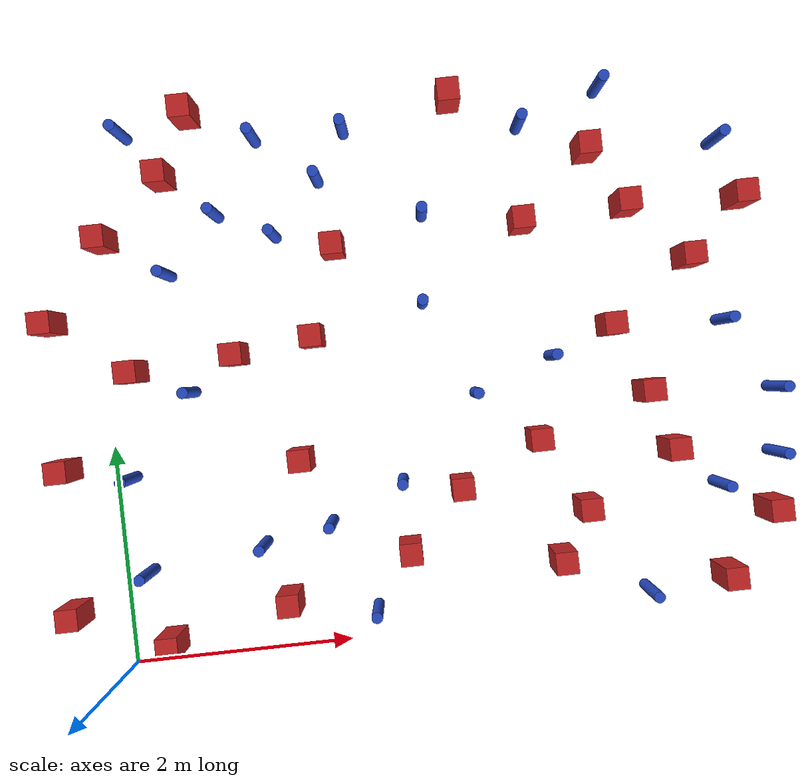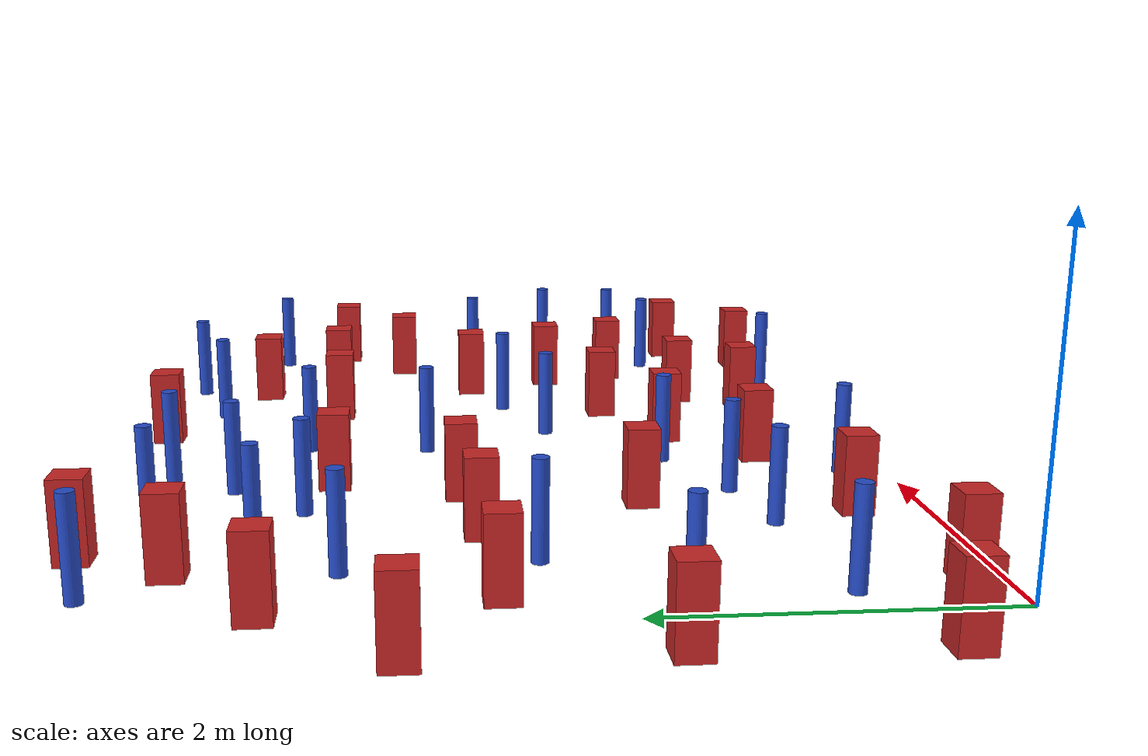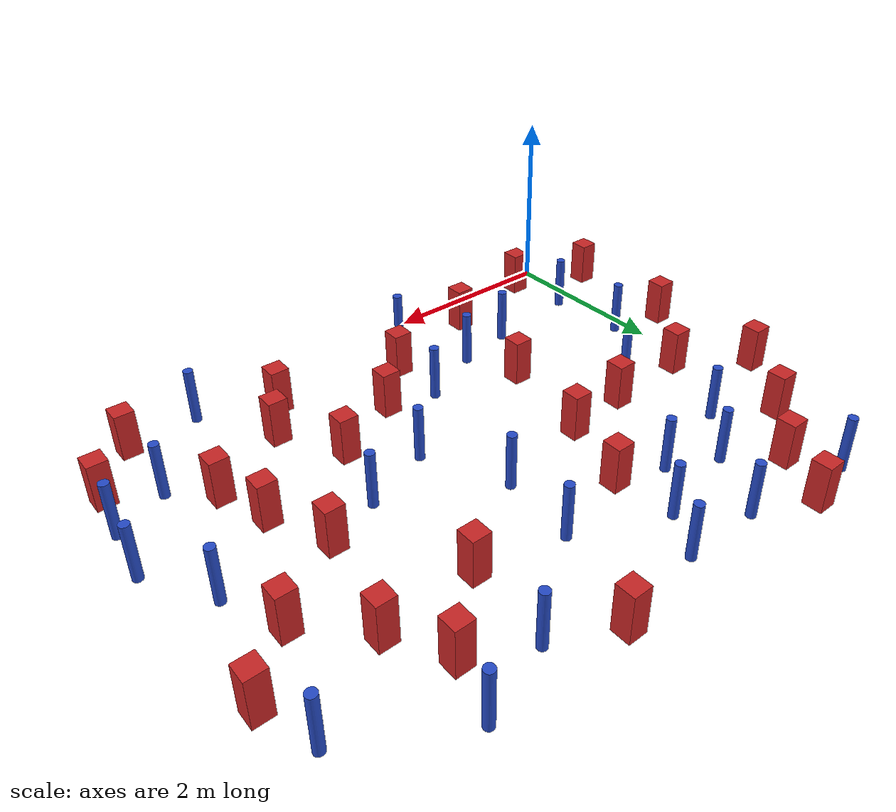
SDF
<sdf version="1.6">
 <model name="dense_43">
  <model name="square_post_obstacle3">
   <static>true</static>
   <pose>3.39269414633 4.85101991493 1.91545236811e-07 -7.35059704564e-06 1.12565212e-07 2.39332434364e-05</pose>
   <link name="link">
    <pose>0 0 0.25 0 -0 0</pose>
    <inertial>
     <mass>100</mass>
     <inertia>
      <ixx>0.166667</ixx>
      <ixy>0</ixy>
      <ixz>0</ixz>
      <iyy>0.166667</iyy>
      <iyz>0</iyz>
      <izz>0.166667</izz>
     </inertia>
    </inertial>
    <collision name="collision"><geometry><box><size>.2 .2 .5</size></box></geometry></collision>
    <visual name="visual">
     <geometry><box><size>.2 .2 .5</size></box></geometry>
     <material>
      <script><name>Gazebo/Red</name><uri>file://media/materials/scripts/gazebo.material</uri></script>
     </material>
    </visual>
   </link>
  </model>
  <model name="pole_obstacle5">
   <static>true</static>
   <pose>2.62684425303 1.42801959995 7.38925637345e-09 -8.471706928e-08 1.24976765152e-08 -1.74513093012e-07</pose>
   <link name="link">
    <pose>0 0 0.3 0 -0 0</pose>
    <inertial>
     <mass>1</mass>
     <inertia><ixx>0.145833</ixx><ixy>0</ixy><ixz>0</ixz><iyy>0.145833</iyy><iyz>0</iyz><izz>0.125</izz></inertia>
    </inertial>
    <collision name="collision">
     <geometry><cylinder><radius>0.05</radius><length>.6</length></cylinder></geometry>
    </collision>
    <visual name="visual">
     <geometry><cylinder><radius>0.05</radius><length>.6</length></cylinder></geometry>
     <material>
      <script><name>Gazebo/Blue</name><uri>file://media/materials/scripts/gazebo.material</uri></script>
     </material>
    </visual>
   </link>
  </model>
  <model name="pole_obstacle7">
   <static>true</static>
   <pose>3.04893697726 3.82194776182 7.38925637345e-09 -8.47170692798e-08 1.24976764939e-08 -1.74513093025e-07</pose>
   <link name="link">
    <pose>0 0 0.3 0 -0 0</pose>
    <inertial>
     <mass>1</mass>
     <inertia><ixx>0.145833</ixx><ixy>0</ixy><ixz>0</ixz><iyy>0.145833</iyy><iyz>0</iyz><izz>0.125</izz></inertia>
    </inertial>
    <collision name="collision">
     <geometry><cylinder><radius>0.05</radius><length>.6</length></cylinder></geometry>
    </collision>
    <visual name="visual">
     <geometry><cylinder><radius>0.05</radius><length>.6</length></cylinder></geometry>
     <material>
      <script><name>Gazebo/Blue</name><uri>file://media/materials/scripts/gazebo.material</uri></script>
     </material>
    </visual>
   </link>
  </model>
  <model name="pole_obstacle15">
   <static>true</static>
   <pose>0.688545159779 3.51589472263 7.38925637345e-09 -8.47170692799e-08 1.2497676509e-08 -1.74513093016e-07</pose>
   <link name="link">
    <pose>0 0 0.3 0 -0 0</pose>
    <inertial>
     <mass>1</mass>
     <inertia><ixx>0.145833</ixx><ixy>0</ixy><ixz>0</ixz><iyy>0.145833</iyy><iyz>0</iyz><izz>0.125</izz></inertia>
    </inertial>
    <collision name="collision">
     <geometry><cylinder><radius>0.05</radius><length>.6</length></cylinder></geometry>
    </collision>
    <visual name="visual">
     <geometry><cylinder><radius>0.05</radius><length>.6</length></cylinder></geometry>
     <material>
      <script><name>Gazebo/Blue</name><uri>file://media/materials/scripts/gazebo.material</uri></script>
     </material>
    </visual>
   </link>
  </model>
  <model name="square_post_obstacle23">
   <static>true</static>
   <pose>3.93727904672 3.65878601379 1.91545236811e-07 -7.35059704564e-06 1.12565212e-07 2.39332434364e-05</pose>
   <link name="link">
    <pose>0 0 0.25 0 -0 0</pose>
    <inertial>
     <mass>100</mass>
     <inertia>
      <ixx>0.166667</ixx>
      <ixy>0</ixy>
      <ixz>0</ixz>
      <iyy>0.166667</iyy>
      <iyz>0</iyz>
      <izz>0.166667</izz>
     </inertia>
    </inertial>
    <collision name="collision"><geometry><box><size>.2 .2 .5</size></box></geometry></collision>
    <visual name="visual">
     <geometry><box><size>.2 .2 .5</size></box></geometry>
     <material>
      <script><name>Gazebo/Red</name><uri>file://media/materials/scripts/gazebo.material</uri></script>
     </material>
    </visual>
   </link>
  </model>
  <model name="square_post_obstacle30">
   <static>true</static>
   <pose>4.59109555486 4.25223819643 1.91545236811e-07 -7.35059704564e-06 1.12565212e-07 2.39332434364e-05</pose>
   <link name="link">
    <pose>0 0 0.25 0 -0 0</pose>
    <inertial>
     <mass>100</mass>
     <inertia>
      <ixx>0.166667</ixx>
      <ixy>0</ixy>
      <ixz>0</ixz>
      <iyy>0.166667</iyy>
      <iyz>0</iyz>
      <izz>0.166667</izz>
     </inertia>
    </inertial>
    <collision name="collision"><geometry><box><size>.2 .2 .5</size></box></geometry></collision>
    <visual name="visual">
     <geometry><box><size>.2 .2 .5</size></box></geometry>
     <material>
      <script><name>Gazebo/Red</name><uri>file://media/materials/scripts/gazebo.material</uri></script>
     </material>
    </visual>
   </link>
  </model>
  <model name="pole_obstacle21">
   <static>true</static>
   <pose>3.37043640496 2.15173362106 7.38925637345e-09 -8.47170692798e-08 1.24976764939e-08 -1.74513093025e-07</pose>
   <link name="link">
    <pose>0 0 0.3 0 -0 0</pose>
    <inertial>
     <mass>1</mass>
     <inertia><ixx>0.145833</ixx><ixy>0</ixy><ixz>0</ixz><iyy>0.145833</iyy><iyz>0</iyz><izz>0.125</izz></inertia>
    </inertial>
    <collision name="collision">
     <geometry><cylinder><radius>0.05</radius><length>.6</length></cylinder></geometry>
    </collision>
    <visual name="visual">
     <geometry><cylinder><radius>0.05</radius><length>.6</length></cylinder></geometry>
     <material>
      <script><name>Gazebo/Blue</name><uri>file://media/materials/scripts/gazebo.material</uri></script>
     </material>
    </visual>
   </link>
  </model>
  <model name="pole_obstacle41">
   <static>true</static>
   <pose>0.797271641177 2.42979202568 7.38925637345e-09 -8.47170692799e-08 1.2497676509e-08 -1.74513093016e-07</pose>
   <link name="link">
    <pose>0 0 0.3 0 -0 0</pose>
    <inertial>
     <mass>1</mass>
     <inertia><ixx>0.145833</ixx><ixy>0</ixy><ixz>0</ixz><iyy>0.145833</iyy><iyz>0</iyz><izz>0.125</izz></inertia>
    </inertial>
    <collision name="collision">
     <geometry><cylinder><radius>0.05</radius><length>.6</length></cylinder></geometry>
    </collision>
    <visual name="visual">
     <geometry><cylinder><radius>0.05</radius><length>.6</length></cylinder></geometry>
     <material>
      <script><name>Gazebo/Blue</name><uri>file://media/materials/scripts/gazebo.material</uri></script>
     </material>
    </visual>
   </link>
  </model>
  <model name="square_post_obstacle43">
   <static>true</static>
   <pose>1.94496075502 2.81742902487 1.91545236811e-07 -7.35059704564e-06 1.12565212e-07 2.39332434364e-05</pose>
   <link name="link">
    <pose>0 0 0.25 0 -0 0</pose>
    <inertial>
     <mass>100</mass>
     <inertia>
      <ixx>0.166667</ixx>
      <ixy>0</ixy>
      <ixz>0</ixz>
      <iyy>0.166667</iyy>
      <iyz>0</iyz>
      <izz>0.166667</izz>
     </inertia>
    </inertial>
    <collision name="collision"><geometry><box><size>.2 .2 .5</size></box></geometry></collision>
    <visual name="visual">
     <geometry><box><size>.2 .2 .5</size></box></geometry>
     <material>
      <script><name>Gazebo/Red</name><uri>file://media/materials/scripts/gazebo.material</uri></script>
     </material>
    </visual>
   </link>
  </model>
  <model name="square_post_obstacle46">
   <static>true</static>
   <pose>5.93546276615 0.833515930917 1.91545236811e-07 -7.35059704564e-06 1.12565212e-07 2.39332434364e-05</pose>
   <link name="link">
    <pose>0 0 0.25 0 -0 0</pose>
    <inertial>
     <mass>100</mass>
     <inertia>
      <ixx>0.166667</ixx>
      <ixy>0</ixy>
      <ixz>0</ixz>
      <iyy>0.166667</iyy>
      <iyz>0</iyz>
      <izz>0.166667</izz>
     </inertia>
    </inertial>
    <collision name="collision"><geometry><box><size>.2 .2 .5</size></box></geometry></collision>
    <visual name="visual">
     <geometry><box><size>.2 .2 .5</size></box></geometry>
     <material>
      <script><name>Gazebo/Red</name><uri>file://media/materials/scripts/gazebo.material</uri></script>
     </material>
    </visual>
   </link>
  </model>
  <model name="pole_obstacle49">
   <static>true</static>
   <pose>5.48091124922 1.10294031606 7.38925637345e-09 -8.471706928e-08 1.24976765134e-08 -1.74513093015e-07</pose>
   <link name="link">
    <pose>0 0 0.3 0 -0 0</pose>
    <inertial>
     <mass>1</mass>
     <inertia><ixx>0.145833</ixx><ixy>0</ixy><ixz>0</ixz><iyy>0.145833</iyy><iyz>0</iyz><izz>0.125</izz></inertia>
    </inertial>
    <collision name="collision">
     <geometry><cylinder><radius>0.05</radius><length>.6</length></cylinder></geometry>
    </collision>
    <visual name="visual">
     <geometry><cylinder><radius>0.05</radius><length>.6</length></cylinder></geometry>
     <material>
      <script><name>Gazebo/Blue</name><uri>file://media/materials/scripts/gazebo.material</uri></script>
     </material>
    </visual>
   </link>
  </model>
  <model name="square_post_obstacle50">
   <static>true</static>
   <pose>1.73080677805 1.72229558547 1.91545236811e-07 -7.35059704564e-06 1.12565212e-07 2.39332434364e-05</pose>
   <link name="link">
    <pose>0 0 0.25 0 -0 0</pose>
    <inertial>
     <mass>100</mass>
     <inertia>
      <ixx>0.166667</ixx>
      <ixy>0</ixy>
      <ixz>0</ixz>
      <iyy>0.166667</iyy>
      <iyz>0</iyz>
      <izz>0.166667</izz>
     </inertia>
    </inertial>
    <collision name="collision"><geometry><box><size>.2 .2 .5</size></box></geometry></collision>
    <visual name="visual">
     <geometry><box><size>.2 .2 .5</size></box></geometry>
     <material>
      <script><name>Gazebo/Red</name><uri>file://media/materials/scripts/gazebo.material</uri></script>
     </material>
    </visual>
   </link>
  </model>
  <model name="pole_obstacle53">
   <static>true</static>
   <pose>5.75095059479 4.20559724311 7.38925637345e-09 -8.47170692796e-08 1.24976764786e-08 -1.74513093032e-07</pose>
   <link name="link">
    <pose>0 0 0.3 0 -0 0</pose>
    <inertial>
     <mass>1</mass>
     <inertia><ixx>0.145833</ixx><ixy>0</ixy><ixz>0</ixz><iyy>0.145833</iyy><iyz>0</iyz><izz>0.125</izz></inertia>
    </inertial>
    <collision name="collision">
     <geometry><cylinder><radius>0.05</radius><length>.6</length></cylinder></geometry>
    </collision>
    <visual name="visual">
     <geometry><cylinder><radius>0.05</radius><length>.6</length></cylinder></geometry>
     <material>
      <script><name>Gazebo/Blue</name><uri>file://media/materials/scripts/gazebo.material</uri></script>
     </material>
    </visual>
   </link>
  </model>
  <model name="pole_obstacle54">
   <static>true</static>
   <pose>4.74827124884 0.211581626598 7.38925637345e-09 -8.471706928e-08 1.24976765136e-08 -1.74513093014e-07</pose>
   <link name="link">
    <pose>0 0 0.3 0 -0 0</pose>
    <inertial>
     <mass>1</mass>
     <inertia><ixx>0.145833</ixx><ixy>0</ixy><ixz>0</ixz><iyy>0.145833</iyy><iyz>0</iyz><izz>0.125</izz></inertia>
    </inertial>
    <collision name="collision">
     <geometry><cylinder><radius>0.05</radius><length>.6</length></cylinder></geometry>
    </collision>
    <visual name="visual">
     <geometry><cylinder><radius>0.05</radius><length>.6</length></cylinder></geometry>
     <material>
      <script><name>Gazebo/Blue</name><uri>file://media/materials/scripts/gazebo.material</uri></script>
     </material>
    </visual>
   </link>
  </model>
  <model name="pole_obstacle55">
   <static>true</static>
   <pose>1.31430388696 0.986021853492 7.38925637345e-09 -8.47170692799e-08 1.24976765135e-08 -1.74513093013e-07</pose>
   <link name="link">
    <pose>0 0 0.3 0 -0 0</pose>
    <inertial>
     <mass>1</mass>
     <inertia><ixx>0.145833</ixx><ixy>0</ixy><ixz>0</ixz><iyy>0.145833</iyy><iyz>0</iyz><izz>0.125</izz></inertia>
    </inertial>
    <collision name="collision">
     <geometry><cylinder><radius>0.05</radius><length>.6</length></cylinder></geometry>
    </collision>
    <visual name="visual">
     <geometry><cylinder><radius>0.05</radius><length>.6</length></cylinder></geometry>
     <material>
      <script><name>Gazebo/Blue</name><uri>file://media/materials/scripts/gazebo.material</uri></script>
     </material>
    </visual>
   </link>
  </model>
  <model name="pole_obstacle59">
   <static>true</static>
   <pose>1.59656061625 4.67010316386 7.38925637345e-09 -8.47170692799e-08 1.24976765033e-08 -1.74513093018e-07</pose>
   <link name="link">
    <pose>0 0 0.3 0 -0 0</pose>
    <inertial>
     <mass>1</mass>
     <inertia><ixx>0.145833</ixx><ixy>0</ixy><ixz>0</ixz><iyy>0.145833</iyy><iyz>0</iyz><izz>0.125</izz></inertia>
    </inertial>
    <collision name="collision">
     <geometry><cylinder><radius>0.05</radius><length>.6</length></cylinder></geometry>
    </collision>
    <visual name="visual">
     <geometry><cylinder><radius>0.05</radius><length>.6</length></cylinder></geometry>
     <material>
      <script><name>Gazebo/Blue</name><uri>file://media/materials/scripts/gazebo.material</uri></script>
     </material>
    </visual>
   </link>
  </model>
  <model name="pole_obstacle61">
   <static>true</static>
   <pose>0.247560478542 0.840741562802 7.38925637345e-09 -8.47170692798e-08 1.24976764994e-08 -1.7451309302e-07</pose>
   <link name="link">
    <pose>0 0 0.3 0 -0 0</pose>
    <inertial>
     <mass>1</mass>
     <inertia><ixx>0.145833</ixx><ixy>0</ixy><ixz>0</ixz><iyy>0.145833</iyy><iyz>0</iyz><izz>0.125</izz></inertia>
    </inertial>
    <collision name="collision">
     <geometry><cylinder><radius>0.05</radius><length>.6</length></cylinder></geometry>
    </collision>
    <visual name="visual">
     <geometry><cylinder><radius>0.05</radius><length>.6</length></cylinder></geometry>
     <material>
      <script><name>Gazebo/Blue</name><uri>file://media/materials/scripts/gazebo.material</uri></script>
     </material>
    </visual>
   </link>
  </model>
  <model name="pole_obstacle64">
   <static>true</static>
   <pose>1.691365969 3.76829729912 7.38925637345e-09 -8.47170692799e-08 1.24976765053e-08 -1.74513093017e-07</pose>
   <link name="link">
    <pose>0 0 0.3 0 -0 0</pose>
    <inertial>
     <mass>1</mass>
     <inertia><ixx>0.145833</ixx><ixy>0</ixy><ixz>0</ixz><iyy>0.145833</iyy><iyz>0</iyz><izz>0.125</izz></inertia>
    </inertial>
    <collision name="collision">
     <geometry><cylinder><radius>0.05</radius><length>.6</length></cylinder></geometry>
    </collision>
    <visual name="visual">
     <geometry><cylinder><radius>0.05</radius><length>.6</length></cylinder></geometry>
     <material>
      <script><name>Gazebo/Blue</name><uri>file://media/materials/scripts/gazebo.material</uri></script>
     </material>
    </visual>
   </link>
  </model>
  <model name="pole_obstacle81">
   <static>true</static>
   <pose>2.27905216194 0.297636904026 7.38925637345e-09 -8.471706928e-08 1.24976765126e-08 -1.74513093015e-07</pose>
   <link name="link">
    <pose>0 0 0.3 0 -0 0</pose>
    <inertial>
     <mass>1</mass>
     <inertia><ixx>0.145833</ixx><ixy>0</ixy><ixz>0</ixz><iyy>0.145833</iyy><iyz>0</iyz><izz>0.125</izz></inertia>
    </inertial>
    <collision name="collision">
     <geometry><cylinder><radius>0.05</radius><length>.6</length></cylinder></geometry>
    </collision>
    <visual name="visual">
     <geometry><cylinder><radius>0.05</radius><length>.6</length></cylinder></geometry>
     <material>
      <script><name>Gazebo/Blue</name><uri>file://media/materials/scripts/gazebo.material</uri></script>
     </material>
    </visual>
   </link>
  </model>
  <model name="square_post_obstacle85">
   <static>true</static>
   <pose>0.126522414941 3.89223521169 1.91545236811e-07 -7.35059704564e-06 1.12565212e-07 2.39332434364e-05</pose>
   <link name="link">
    <pose>0 0 0.25 0 -0 0</pose>
    <inertial>
     <mass>100</mass>
     <inertia>
      <ixx>0.166667</ixx>
      <ixy>0</ixy>
      <ixz>0</ixz>
      <iyy>0.166667</iyy>
      <iyz>0</iyz>
      <izz>0.166667</izz>
     </inertia>
    </inertial>
    <collision name="collision"><geometry><box><size>.2 .2 .5</size></box></geometry></collision>
    <visual name="visual">
     <geometry><box><size>.2 .2 .5</size></box></geometry>
     <material>
      <script><name>Gazebo/Red</name><uri>file://media/materials/scripts/gazebo.material</uri></script>
     </material>
    </visual>
   </link>
  </model>
  <model name="square_post_obstacle93">
   <static>true</static>
   <pose>0.28300252163 2.66964701724 1.91545236811e-07 -7.35059704564e-06 1.12565212e-07 2.39332434364e-05</pose>
   <link name="link">
    <pose>0 0 0.25 0 -0 0</pose>
    <inertial>
     <mass>100</mass>
     <inertia>
      <ixx>0.166667</ixx>
      <ixy>0</ixy>
      <ixz>0</ixz>
      <iyy>0.166667</iyy>
      <iyz>0</iyz>
      <izz>0.166667</izz>
     </inertia>
    </inertial>
    <collision name="collision"><geometry><box><size>.2 .2 .5</size></box></geometry></collision>
    <visual name="visual">
     <geometry><box><size>.2 .2 .5</size></box></geometry>
     <material>
      <script><name>Gazebo/Red</name><uri>file://media/materials/scripts/gazebo.material</uri></script>
     </material>
    </visual>
   </link>
  </model>
  <model name="square_post_obstacle97">
   <static>true</static>
   <pose>4.89265047885 3.71552252274 1.91545236811e-07 -7.35059704564e-06 1.12565212e-07 2.39332434364e-05</pose>
   <link name="link">
    <pose>0 0 0.25 0 -0 0</pose>
    <inertial>
     <mass>100</mass>
     <inertia>
      <ixx>0.166667</ixx>
      <ixy>0</ixy>
      <ixz>0</ixz>
      <iyy>0.166667</iyy>
      <iyz>0</iyz>
      <izz>0.166667</izz>
     </inertia>
    </inertial>
    <collision name="collision"><geometry><box><size>.2 .2 .5</size></box></geometry></collision>
    <visual name="visual">
     <geometry><box><size>.2 .2 .5</size></box></geometry>
     <material>
      <script><name>Gazebo/Red</name><uri>file://media/materials/scripts/gazebo.material</uri></script>
     </material>
    </visual>
   </link>
  </model>
  <model name="square_post_obstacle98">
   <static>true</static>
   <pose>3.1556546642 1.31788239723 1.91545236811e-07 -7.35059704564e-06 1.12565212e-07 2.39332434364e-05</pose>
   <link name="link">
    <pose>0 0 0.25 0 -0 0</pose>
    <inertial>
     <mass>100</mass>
     <inertia>
      <ixx>0.166667</ixx>
      <ixy>0</ixy>
      <ixz>0</ixz>
      <iyy>0.166667</iyy>
      <iyz>0</iyz>
      <izz>0.166667</izz>
     </inertia>
    </inertial>
    <collision name="collision"><geometry><box><size>.2 .2 .5</size></box></geometry></collision>
    <visual name="visual">
     <geometry><box><size>.2 .2 .5</size></box></geometry>
     <material>
      <script><name>Gazebo/Red</name><uri>file://media/materials/scripts/gazebo.material</uri></script>
     </material>
    </visual>
   </link>
  </model>
  <model name="pole_obstacle110">
   <static>true</static>
   <pose>2.4119110043 4.66040776027 7.38925637345e-09 -8.47170692798e-08 1.24976765033e-08 -1.74513093019e-07</pose>
   <link name="link">
    <pose>0 0 0.3 0 -0 0</pose>
    <inertial>
     <mass>1</mass>
     <inertia><ixx>0.145833</ixx><ixy>0</ixy><ixz>0</ixz><iyy>0.145833</iyy><iyz>0</iyz><izz>0.125</izz></inertia>
    </inertial>
    <collision name="collision">
     <geometry><cylinder><radius>0.05</radius><length>.6</length></cylinder></geometry>
    </collision>
    <visual name="visual">
     <geometry><cylinder><radius>0.05</radius><length>.6</length></cylinder></geometry>
     <material>
      <script><name>Gazebo/Blue</name><uri>file://media/materials/scripts/gazebo.material</uri></script>
     </material>
    </visual>
   </link>
  </model>
  <model name="pole_obstacle115">
   <static>true</static>
   <pose>1.94290935224 1.11754104903 7.38925637345e-09 -8.471706928e-08 1.24976765079e-08 -1.74513093017e-07</pose>
   <link name="link">
    <pose>0 0 0.3 0 -0 0</pose>
    <inertial>
     <mass>1</mass>
     <inertia><ixx>0.145833</ixx><ixy>0</ixy><ixz>0</ixz><iyy>0.145833</iyy><iyz>0</iyz><izz>0.125</izz></inertia>
    </inertial>
    <collision name="collision">
     <geometry><cylinder><radius>0.05</radius><length>.6</length></cylinder></geometry>
    </collision>
    <visual name="visual">
     <geometry><cylinder><radius>0.05</radius><length>.6</length></cylinder></geometry>
     <material>
      <script><name>Gazebo/Blue</name><uri>file://media/materials/scripts/gazebo.material</uri></script>
     </material>
    </visual>
   </link>
  </model>
  <model name="pole_obstacle118">
   <static>true</static>
   <pose>0.410439473755 4.82484398117 7.38925637345e-09 -8.471706928e-08 1.24976765079e-08 -1.74513093015e-07</pose>
   <link name="link">
    <pose>0 0 0.3 0 -0 0</pose>
    <inertial>
     <mass>1</mass>
     <inertia><ixx>0.145833</ixx><ixy>0</ixy><ixz>0</ixz><iyy>0.145833</iyy><iyz>0</iyz><izz>0.125</izz></inertia>
    </inertial>
    <collision name="collision">
     <geometry><cylinder><radius>0.05</radius><length>.6</length></cylinder></geometry>
    </collision>
    <visual name="visual">
     <geometry><cylinder><radius>0.05</radius><length>.6</length></cylinder></geometry>
     <material>
      <script><name>Gazebo/Blue</name><uri>file://media/materials/scripts/gazebo.material</uri></script>
     </material>
    </visual>
   </link>
  </model>
  <model name="pole_obstacle121">
   <static>true</static>
   <pose>0.172564939092 1.70826776019 7.38925637345e-09 -8.47170692799e-08 1.24976765106e-08 -1.74513093015e-07</pose>
   <link name="link">
    <pose>0 0 0.3 0 -0 0</pose>
    <inertial>
     <mass>1</mass>
     <inertia><ixx>0.145833</ixx><ixy>0</ixy><ixz>0</ixz><iyy>0.145833</iyy><iyz>0</iyz><izz>0.125</izz></inertia>
    </inertial>
    <collision name="collision">
     <geometry><cylinder><radius>0.05</radius><length>.6</length></cylinder></geometry>
    </collision>
    <visual name="visual">
     <geometry><cylinder><radius>0.05</radius><length>.6</length></cylinder></geometry>
     <material>
      <script><name>Gazebo/Blue</name><uri>file://media/materials/scripts/gazebo.material</uri></script>
     </material>
    </visual>
   </link>
  </model>
  <model name="pole_obstacle125">
   <static>true</static>
   <pose>2.97301047857 3.01708872154 7.38925637345e-09 -8.47170692798e-08 1.24976764939e-08 -1.74513093025e-07</pose>
   <link name="link">
    <pose>0 0 0.3 0 -0 0</pose>
    <inertial>
     <mass>1</mass>
     <inertia><ixx>0.145833</ixx><ixy>0</ixy><ixz>0</ixz><iyy>0.145833</iyy><iyz>0</iyz><izz>0.125</izz></inertia>
    </inertial>
    <collision name="collision">
     <geometry><cylinder><radius>0.05</radius><length>.6</length></cylinder></geometry>
    </collision>
    <visual name="visual">
     <geometry><cylinder><radius>0.05</radius><length>.6</length></cylinder></geometry>
     <material>
      <script><name>Gazebo/Blue</name><uri>file://media/materials/scripts/gazebo.material</uri></script>
     </material>
    </visual>
   </link>
  </model>
  <model name="pole_obstacle129">
   <static>true</static>
   <pose>6.06992764632 1.92157409443 7.38925637345e-09 -8.471706928e-08 1.24976765134e-08 -1.74513093015e-07</pose>
   <link name="link">
    <pose>0 0 0.3 0 -0 0</pose>
    <inertial>
     <mass>1</mass>
     <inertia><ixx>0.145833</ixx><ixy>0</ixy><ixz>0</ixz><iyy>0.145833</iyy><iyz>0</iyz><izz>0.125</izz></inertia>
    </inertial>
    <collision name="collision">
     <geometry><cylinder><radius>0.05</radius><length>.6</length></cylinder></geometry>
    </collision>
    <visual name="visual">
     <geometry><cylinder><radius>0.05</radius><length>.6</length></cylinder></geometry>
     <material>
      <script><name>Gazebo/Blue</name><uri>file://media/materials/scripts/gazebo.material</uri></script>
     </material>
    </visual>
   </link>
  </model>
  <model name="square_post_obstacle119">
   <static>true</static>
   <pose>5.92905910365 3.68125669373 1.91545236811e-07 -7.35059704564e-06 1.12565212e-07 2.39332434364e-05</pose>
   <link name="link">
    <pose>0 0 0.25 0 -0 0</pose>
    <inertial>
     <mass>100</mass>
     <inertia>
      <ixx>0.166667</ixx>
      <ixy>0</ixy>
      <ixz>0</ixz>
      <iyy>0.166667</iyy>
      <iyz>0</iyz>
      <izz>0.166667</izz>
     </inertia>
    </inertial>
    <collision name="collision"><geometry><box><size>.2 .2 .5</size></box></geometry></collision>
    <visual name="visual">
     <geometry><box><size>.2 .2 .5</size></box></geometry>
     <material>
      <script><name>Gazebo/Red</name><uri>file://media/materials/scripts/gazebo.material</uri></script>
     </material>
    </visual>
   </link>
  </model>
  <model name="square_post_obstacle124">
   <static>true</static>
   <pose>5.09976439391 1.46765656507 1.91545236811e-07 -7.35059704564e-06 1.12565212e-07 2.39332434364e-05</pose>
   <link name="link">
    <pose>0 0 0.25 0 -0 0</pose>
    <inertial>
     <mass>100</mass>
     <inertia>
      <ixx>0.166667</ixx>
      <ixy>0</ixy>
      <ixz>0</ixz>
      <iyy>0.166667</iyy>
      <iyz>0</iyz>
      <izz>0.166667</izz>
     </inertia>
    </inertial>
    <collision name="collision"><geometry><box><size>.2 .2 .5</size></box></geometry></collision>
    <visual name="visual">
     <geometry><box><size>.2 .2 .5</size></box></geometry>
     <material>
      <script><name>Gazebo/Red</name><uri>file://media/materials/scripts/gazebo.material</uri></script>
     </material>
    </visual>
   </link>
  </model>
  <model name="square_post_obstacle128">
   <static>true</static>
   <pose>5.41319225245 3.18257327118 1.91545236811e-07 -7.35059704564e-06 1.12565212e-07 2.39332434364e-05</pose>
   <link name="link">
    <pose>0 0 0.25 0 -0 0</pose>
    <inertial>
     <mass>100</mass>
     <inertia>
      <ixx>0.166667</ixx>
      <ixy>0</ixy>
      <ixz>0</ixz>
      <iyy>0.166667</iyy>
      <iyz>0</iyz>
      <izz>0.166667</izz>
     </inertia>
    </inertial>
    <collision name="collision"><geometry><box><size>.2 .2 .5</size></box></geometry></collision>
    <visual name="visual">
     <geometry><box><size>.2 .2 .5</size></box></geometry>
     <material>
      <script><name>Gazebo/Red</name><uri>file://media/materials/scripts/gazebo.material</uri></script>
     </material>
    </visual>
   </link>
  </model>
  <model name="square_post_obstacle131">
   <static>true</static>
   <pose>4.26537304499 1.01611656891 1.91545236811e-07 -7.35059704564e-06 1.12565212e-07 2.39332434364e-05</pose>
   <link name="link">
    <pose>0 0 0.25 0 -0 0</pose>
    <inertial>
     <mass>100</mass>
     <inertia>
      <ixx>0.166667</ixx>
      <ixy>0</ixy>
      <ixz>0</ixz>
      <iyy>0.166667</iyy>
      <iyz>0</iyz>
      <izz>0.166667</izz>
     </inertia>
    </inertial>
    <collision name="collision"><geometry><box><size>.2 .2 .5</size></box></geometry></collision>
    <visual name="visual">
     <geometry><box><size>.2 .2 .5</size></box></geometry>
     <material>
      <script><name>Gazebo/Red</name><uri>file://media/materials/scripts/gazebo.material</uri></script>
     </material>
    </visual>
   </link>
  </model>
  <model name="pole_obstacle145">
   <static>true</static>
   <pose>5.66416612427 2.57891257541 7.38925637345e-09 -8.47170692798e-08 1.24976764937e-08 -1.74513093023e-07</pose>
   <link name="link">
    <pose>0 0 0.3 0 -0 0</pose>
    <inertial>
     <mass>1</mass>
     <inertia><ixx>0.145833</ixx><ixy>0</ixy><ixz>0</ixz><iyy>0.145833</iyy><iyz>0</iyz><izz>0.125</izz></inertia>
    </inertial>
    <collision name="collision">
     <geometry><cylinder><radius>0.05</radius><length>.6</length></cylinder></geometry>
    </collision>
    <visual name="visual">
     <geometry><cylinder><radius>0.05</radius><length>.6</length></cylinder></geometry>
     <material>
      <script><name>Gazebo/Blue</name><uri>file://media/materials/scripts/gazebo.material</uri></script>
     </material>
    </visual>
   </link>
  </model>
  <model name="pole_obstacle147">
   <static>true</static>
   <pose>2.13382136571 4.23526740072 7.38925637345e-09 -8.47170692798e-08 1.24976765033e-08 -1.74513093019e-07</pose>
   <link name="link">
    <pose>0 0 0.3 0 -0 0</pose>
    <inertial>
     <mass>1</mass>
     <inertia><ixx>0.145833</ixx><ixy>0</ixy><ixz>0</ixz><iyy>0.145833</iyy><iyz>0</iyz><izz>0.125</izz></inertia>
    </inertial>
    <collision name="collision">
     <geometry><cylinder><radius>0.05</radius><length>.6</length></cylinder></geometry>
    </collision>
    <visual name="visual">
     <geometry><cylinder><radius>0.05</radius><length>.6</length></cylinder></geometry>
     <material>
      <script><name>Gazebo/Blue</name><uri>file://media/materials/scripts/gazebo.material</uri></script>
     </material>
    </visual>
   </link>
  </model>
  <model name="square_post_obstacle138">
   <static>true</static>
   <pose>-0.458689608882 0.538735825372 1.91545236811e-07 -7.35059704564e-06 1.12565212e-07 2.39332434364e-05</pose>
   <link name="link">
    <pose>0 0 0.25 0 -0 0</pose>
    <inertial>
     <mass>100</mass>
     <inertia>
      <ixx>0.166667</ixx>
      <ixy>0</ixy>
      <ixz>0</ixz>
      <iyy>0.166667</iyy>
      <iyz>0</iyz>
      <izz>0.166667</izz>
     </inertia>
    </inertial>
    <collision name="collision"><geometry><box><size>.2 .2 .5</size></box></geometry></collision>
    <visual name="visual">
     <geometry><box><size>.2 .2 .5</size></box></geometry>
     <material>
      <script><name>Gazebo/Red</name><uri>file://media/materials/scripts/gazebo.material</uri></script>
     </material>
    </visual>
   </link>
  </model>
  <model name="square_post_obstacle142">
   <static>true</static>
   <pose>3.99284052215 0.57163998861 1.91545236811e-07 -7.35059704564e-06 1.12565212e-07 2.39332434364e-05</pose>
   <link name="link">
    <pose>0 0 0.25 0 -0 0</pose>
    <inertial>
     <mass>100</mass>
     <inertia>
      <ixx>0.166667</ixx>
      <ixy>0</ixy>
      <ixz>0</ixz>
      <iyy>0.166667</iyy>
      <iyz>0</iyz>
      <izz>0.166667</izz>
     </inertia>
    </inertial>
    <collision name="collision"><geometry><box><size>.2 .2 .5</size></box></geometry></collision>
    <visual name="visual">
     <geometry><box><size>.2 .2 .5</size></box></geometry>
     <material>
      <script><name>Gazebo/Red</name><uri>file://media/materials/scripts/gazebo.material</uri></script>
     </material>
    </visual>
   </link>
  </model>
  <model name="square_post_obstacle146">
   <static>true</static>
   <pose>3.89326363849 1.68022036585 1.91545236811e-07 -7.35059704564e-06 1.12565212e-07 2.39332434364e-05</pose>
   <link name="link">
    <pose>0 0 0.25 0 -0 0</pose>
    <inertial>
     <mass>100</mass>
     <inertia>
      <ixx>0.166667</ixx>
      <ixy>0</ixy>
      <ixz>0</ixz>
      <iyy>0.166667</iyy>
      <iyz>0</iyz>
      <izz>0.166667</izz>
     </inertia>
    </inertial>
    <collision name="collision"><geometry><box><size>.2 .2 .5</size></box></geometry></collision>
    <visual name="visual">
     <geometry><box><size>.2 .2 .5</size></box></geometry>
     <material>
      <script><name>Gazebo/Red</name><uri>file://media/materials/scripts/gazebo.material</uri></script>
     </material>
    </visual>
   </link>
  </model>
  <model name="square_post_obstacle148">
   <static>true</static>
   <pose>2.6325285896 0.793880602044 1.91545236811e-07 -7.35059704564e-06 1.12565212e-07 2.39332434364e-05</pose>
   <link name="link">
    <pose>0 0 0.25 0 -0 0</pose>
    <inertial>
     <mass>100</mass>
     <inertia>
      <ixx>0.166667</ixx>
      <ixy>0</ixy>
      <ixz>0</ixz>
      <iyy>0.166667</iyy>
      <iyz>0</iyz>
      <izz>0.166667</izz>
     </inertia>
    </inertial>
    <collision name="collision"><geometry><box><size>.2 .2 .5</size></box></geometry></collision>
    <visual name="visual">
     <geometry><box><size>.2 .2 .5</size></box></geometry>
     <material>
      <script><name>Gazebo/Red</name><uri>file://media/materials/scripts/gazebo.material</uri></script>
     </material>
    </visual>
   </link>
  </model>
  <model name="square_post_obstacle149">
   <static>true</static>
   <pose>1.00387183513 4.96047089195 1.91545236811e-07 -7.35059704564e-06 1.12565212e-07 2.39332434364e-05</pose>
   <link name="link">
    <pose>0 0 0.25 0 -0 0</pose>
    <inertial>
     <mass>100</mass>
     <inertia>
      <ixx>0.166667</ixx>
      <ixy>0</ixy>
      <ixz>0</ixz>
      <iyy>0.166667</iyy>
      <iyz>0</iyz>
      <izz>0.166667</izz>
     </inertia>
    </inertial>
    <collision name="collision"><geometry><box><size>.2 .2 .5</size></box></geometry></collision>
    <visual name="visual">
     <geometry><box><size>.2 .2 .5</size></box></geometry>
     <material>
      <script><name>Gazebo/Red</name><uri>file://media/materials/scripts/gazebo.material</uri></script>
     </material>
    </visual>
   </link>
  </model>
  <model name="square_post_obstacle152">
   <static>true</static>
   <pose>2.21623363284 3.61220384763 1.91545236811e-07 -7.35059704564e-06 1.12565212e-07 2.39332434364e-05</pose>
   <link name="link">
    <pose>0 0 0.25 0 -0 0</pose>
    <inertial>
     <mass>100</mass>
     <inertia>
      <ixx>0.166667</ixx>
      <ixy>0</ixy>
      <ixz>0</ixz>
      <iyy>0.166667</iyy>
      <iyz>0</iyz>
      <izz>0.166667</izz>
     </inertia>
    </inertial>
    <collision name="collision"><geometry><box><size>.2 .2 .5</size></box></geometry></collision>
    <visual name="visual">
     <geometry><box><size>.2 .2 .5</size></box></geometry>
     <material>
      <script><name>Gazebo/Red</name><uri>file://media/materials/scripts/gazebo.material</uri></script>
     </material>
    </visual>
   </link>
  </model>
  <model name="square_post_obstacle156">
   <static>true</static>
   <pose>0.721197845902 4.41073998046 1.91545236811e-07 -7.35059704564e-06 1.12565212e-07 2.39332434364e-05</pose>
   <link name="link">
    <pose>0 0 0.25 0 -0 0</pose>
    <inertial>
     <mass>100</mass>
     <inertia>
      <ixx>0.166667</ixx>
      <ixy>0</ixy>
      <ixz>0</ixz>
      <iyy>0.166667</iyy>
      <iyz>0</iyz>
      <izz>0.166667</izz>
     </inertia>
    </inertial>
    <collision name="collision"><geometry><box><size>.2 .2 .5</size></box></geometry></collision>
    <visual name="visual">
     <geometry><box><size>.2 .2 .5</size></box></geometry>
     <material>
      <script><name>Gazebo/Red</name><uri>file://media/materials/scripts/gazebo.material</uri></script>
     </material>
    </visual>
   </link>
  </model>
  <model name="pole_obstacle170">
   <static>true</static>
   <pose>4.08973850944 2.41609732211 7.38925637345e-09 -8.47170692798e-08 1.24976764937e-08 -1.74513093023e-07</pose>
   <link name="link">
    <pose>0 0 0.3 0 -0 0</pose>
    <inertial>
     <mass>1</mass>
     <inertia><ixx>0.145833</ixx><ixy>0</ixy><ixz>0</ixz><iyy>0.145833</iyy><iyz>0</iyz><izz>0.125</izz></inertia>
    </inertial>
    <collision name="collision">
     <geometry><cylinder><radius>0.05</radius><length>.6</length></cylinder></geometry>
    </collision>
    <visual name="visual">
     <geometry><cylinder><radius>0.05</radius><length>.6</length></cylinder></geometry>
     <material>
      <script><name>Gazebo/Blue</name><uri>file://media/materials/scripts/gazebo.material</uri></script>
     </material>
    </visual>
   </link>
  </model>
  <model name="square_post_obstacle162">
   <static>true</static>
   <pose>-0.422742088772 1.84501490467 1.91545236811e-07 -7.35059704564e-06 1.12565212e-07 2.39332434364e-05</pose>
   <link name="link">
    <pose>0 0 0.25 0 -0 0</pose>
    <inertial>
     <mass>100</mass>
     <inertia>
      <ixx>0.166667</ixx>
      <ixy>0</ixy>
      <ixz>0</ixz>
      <iyy>0.166667</iyy>
      <iyz>0</iyz>
      <izz>0.166667</izz>
     </inertia>
    </inertial>
    <collision name="collision"><geometry><box><size>.2 .2 .5</size></box></geometry></collision>
    <visual name="visual">
     <geometry><box><size>.2 .2 .5</size></box></geometry>
     <material>
      <script><name>Gazebo/Red</name><uri>file://media/materials/scripts/gazebo.material</uri></script>
     </material>
    </visual>
   </link>
  </model>
  <model name="square_post_obstacle165">
   <static>true</static>
   <pose>0.393749364266 0.191544421758 1.91545236811e-07 -7.35059704564e-06 1.12565212e-07 2.39332434364e-05</pose>
   <link name="link">
    <pose>0 0 0.25 0 -0 0</pose>
    <inertial>
     <mass>100</mass>
     <inertia>
      <ixx>0.166667</ixx>
      <ixy>0</ixy>
      <ixz>0</ixz>
      <iyy>0.166667</iyy>
      <iyz>0</iyz>
      <izz>0.166667</izz>
     </inertia>
    </inertial>
    <collision name="collision"><geometry><box><size>.2 .2 .5</size></box></geometry></collision>
    <visual name="visual">
     <geometry><box><size>.2 .2 .5</size></box></geometry>
     <material>
      <script><name>Gazebo/Red</name><uri>file://media/materials/scripts/gazebo.material</uri></script>
     </material>
    </visual>
   </link>
  </model>
  <model name="pole_obstacle187">
   <static>true</static>
   <pose>4.00444737899 4.53480388608 7.38925637345e-09 -8.47170692796e-08 1.24976764793e-08 -1.74513093032e-07</pose>
   <link name="link">
    <pose>0 0 0.3 0 -0 0</pose>
    <inertial>
     <mass>1</mass>
     <inertia><ixx>0.145833</ixx><ixy>0</ixy><ixz>0</ixz><iyy>0.145833</iyy><iyz>0</iyz><izz>0.125</izz></inertia>
    </inertial>
    <collision name="collision">
     <geometry><cylinder><radius>0.05</radius><length>.6</length></cylinder></geometry>
    </collision>
    <visual name="visual">
     <geometry><cylinder><radius>0.05</radius><length>.6</length></cylinder></geometry>
     <material>
      <script><name>Gazebo/Blue</name><uri>file://media/materials/scripts/gazebo.material</uri></script>
     </material>
    </visual>
   </link>
  </model>
  <model name="square_post_obstacle183">
   <static>true</static>
   <pose>1.49876886297 0.456941226907 1.91545236811e-07 -7.35059704564e-06 1.12565212e-07 2.39332434364e-05</pose>
   <link name="link">
    <pose>0 0 0.25 0 -0 0</pose>
    <inertial>
     <mass>100</mass>
     <inertia>
      <ixx>0.166667</ixx>
      <ixy>0</ixy>
      <ixz>0</ixz>
      <iyy>0.166667</iyy>
      <iyz>0</iyz>
      <izz>0.166667</izz>
     </inertia>
    </inertial>
    <collision name="collision"><geometry><box><size>.2 .2 .5</size></box></geometry></collision>
    <visual name="visual">
     <geometry><box><size>.2 .2 .5</size></box></geometry>
     <material>
      <script><name>Gazebo/Red</name><uri>file://media/materials/scripts/gazebo.material</uri></script>
     </material>
    </visual>
   </link>
  </model>
  <model name="square_post_obstacle188">
   <static>true</static>
   <pose>1.22717703073 2.72871970098 1.91545236811e-07 -7.35059704564e-06 1.12565212e-07 2.39332434364e-05</pose>
   <link name="link">
    <pose>0 0 0.25 0 -0 0</pose>
    <inertial>
     <mass>100</mass>
     <inertia>
      <ixx>0.166667</ixx>
      <ixy>0</ixy>
      <ixz>0</ixz>
      <iyy>0.166667</iyy>
      <iyz>0</iyz>
      <izz>0.166667</izz>
     </inertia>
    </inertial>
    <collision name="collision"><geometry><box><size>.2 .2 .5</size></box></geometry></collision>
    <visual name="visual">
     <geometry><box><size>.2 .2 .5</size></box></geometry>
     <material>
      <script><name>Gazebo/Red</name><uri>file://media/materials/scripts/gazebo.material</uri></script>
     </material>
    </visual>
   </link>
  </model>
  <model name="square_post_obstacle197">
   <static>true</static>
   <pose>4.92701363904 2.01002847384 1.91545236811e-07 -7.35059704564e-06 1.12565212e-07 2.39332434364e-05</pose>
   <link name="link">
    <pose>0 0 0.25 0 -0 0</pose>
    <inertial>
     <mass>100</mass>
     <inertia>
      <ixx>0.166667</ixx>
      <ixy>0</ixy>
      <ixz>0</ixz>
      <iyy>0.166667</iyy>
      <iyz>0</iyz>
      <izz>0.166667</izz>
     </inertia>
    </inertial>
    <collision name="collision"><geometry><box><size>.2 .2 .5</size></box></geometry></collision>
    <visual name="visual">
     <geometry><box><size>.2 .2 .5</size></box></geometry>
     <material>
      <script><name>Gazebo/Red</name><uri>file://media/materials/scripts/gazebo.material</uri></script>
     </material>
    </visual>
   </link>
  </model>
  <model name="square_post_obstacle201">
   <static>true</static>
   <pose>4.65144211614 2.63866284139 1.91545236811e-07 -7.35059704564e-06 1.12565212e-07 2.39332434364e-05</pose>
   <link name="link">
    <pose>0 0 0.25 0 -0 0</pose>
    <inertial>
     <mass>100</mass>
     <inertia>
      <ixx>0.166667</ixx>
      <ixy>0</ixy>
      <ixz>0</ixz>
      <iyy>0.166667</iyy>
      <iyz>0</iyz>
      <izz>0.166667</izz>
     </inertia>
    </inertial>
    <collision name="collision"><geometry><box><size>.2 .2 .5</size></box></geometry></collision>
    <visual name="visual">
     <geometry><box><size>.2 .2 .5</size></box></geometry>
     <material>
      <script><name>Gazebo/Red</name><uri>file://media/materials/scripts/gazebo.material</uri></script>
     </material>
    </visual>
   </link>
  </model>
  <model name="square_post_obstacle202">
   <static>true</static>
   <pose>5.47544066183 0.276341708343 1.91545236811e-07 -7.35059704564e-06 1.12565212e-07 2.39332434364e-05</pose>
   <link name="link">
    <pose>0 0 0.25 0 -0 0</pose>
    <inertial>
     <mass>100</mass>
     <inertia>
      <ixx>0.166667</ixx>
      <ixy>0</ixy>
      <ixz>0</ixz>
      <iyy>0.166667</iyy>
      <iyz>0</iyz>
      <izz>0.166667</izz>
     </inertia>
    </inertial>
    <collision name="collision"><geometry><box><size>.2 .2 .5</size></box></geometry></collision>
    <visual name="visual">
     <geometry><box><size>.2 .2 .5</size></box></geometry>
     <material>
      <script><name>Gazebo/Red</name><uri>file://media/materials/scripts/gazebo.material</uri></script>
     </material>
    </visual>
   </link>
  </model>
  <model name="pole_obstacle188">
   <static>true</static>
   <pose>4.75002381229 4.79271017495 7.38925637345e-09 -8.47170692796e-08 1.24976764786e-08 -1.74513093032e-07</pose>
   <link name="link">
    <pose>0 0 0.3 0 -0 0</pose>
    <inertial>
     <mass>1</mass>
     <inertia><ixx>0.145833</ixx><ixy>0</ixy><ixz>0</ixz><iyy>0.145833</iyy><iyz>0</iyz><izz>0.125</izz></inertia>
    </inertial>
    <collision name="collision">
     <geometry><cylinder><radius>0.05</radius><length>.6</length></cylinder></geometry>
    </collision>
    <visual name="visual">
     <geometry><cylinder><radius>0.05</radius><length>.6</length></cylinder></geometry>
     <material>
      <script><name>Gazebo/Blue</name><uri>file://media/materials/scripts/gazebo.material</uri></script>
     </material>
    </visual>
   </link>
  </model>
  <model name="pole_obstacle212">
   <static>true</static>
   <pose>1.18116233104 4.01334866722 7.38925637345e-09 -8.47170692799e-08 1.24976765024e-08 -1.7451309302e-07</pose>
   <link name="link">
    <pose>0 0 0.3 0 -0 0</pose>
    <inertial>
     <mass>1</mass>
     <inertia><ixx>0.145833</ixx><ixy>0</ixy><ixz>0</ixz><iyy>0.145833</iyy><iyz>0</iyz><izz>0.125</izz></inertia>
    </inertial>
    <collision name="collision">
     <geometry><cylinder><radius>0.05</radius><length>.6</length></cylinder></geometry>
    </collision>
    <visual name="visual">
     <geometry><cylinder><radius>0.05</radius><length>.6</length></cylinder></geometry>
     <material>
      <script><name>Gazebo/Blue</name><uri>file://media/materials/scripts/gazebo.material</uri></script>
     </material>
    </visual>
   </link>
  </model>
  <model name="pole_obstacle215">
   <static>true</static>
   <pose>6.01205269417 1.33629586252 7.38925637345e-09 -8.471706928e-08 1.24976765134e-08 -1.74513093015e-07</pose>
   <link name="link">
    <pose>0 0 0.3 0 -0 0</pose>
    <inertial>
     <mass>1</mass>
     <inertia><ixx>0.145833</ixx><ixy>0</ixy><ixz>0</ixz><iyy>0.145833</iyy><iyz>0</iyz><izz>0.125</izz></inertia>
    </inertial>
    <collision name="collision">
     <geometry><cylinder><radius>0.05</radius><length>.6</length></cylinder></geometry>
    </collision>
    <visual name="visual">
     <geometry><cylinder><radius>0.05</radius><length>.6</length></cylinder></geometry>
     <material>
      <script><name>Gazebo/Blue</name><uri>file://media/materials/scripts/gazebo.material</uri></script>
     </material>
    </visual>
   </link>
  </model>
  <model name="square_post_obstacle217">
   <static>true</static>
   <pose>-0.425712035195 3.18411998808 1.91545236811e-07 -7.35059704564e-06 1.12565212e-07 2.39332434364e-05</pose>
   <link name="link">
    <pose>0 0 0.25 0 -0 0</pose>
    <inertial>
     <mass>100</mass>
     <inertia>
      <ixx>0.166667</ixx>
      <ixy>0</ixy>
      <ixz>0</ixz>
      <iyy>0.166667</iyy>
      <iyz>0</iyz>
      <izz>0.166667</izz>
     </inertia>
    </inertial>
    <collision name="collision"><geometry><box><size>.2 .2 .5</size></box></geometry></collision>
    <visual name="visual">
     <geometry><box><size>.2 .2 .5</size></box></geometry>
     <material>
      <script><name>Gazebo/Red</name><uri>file://media/materials/scripts/gazebo.material</uri></script>
     </material>
    </visual>
   </link>
  </model>
 </model>
</sdf>
